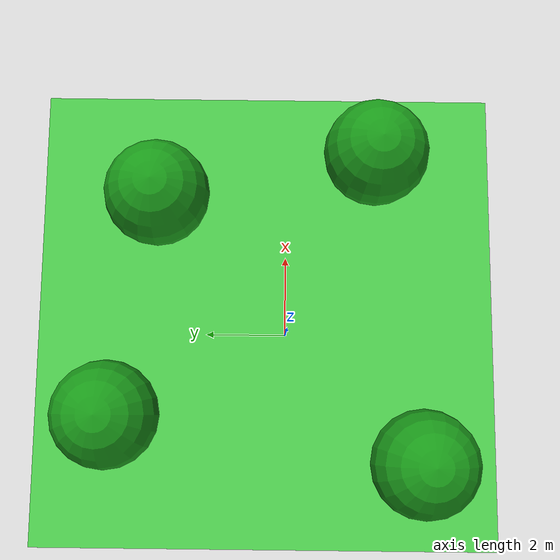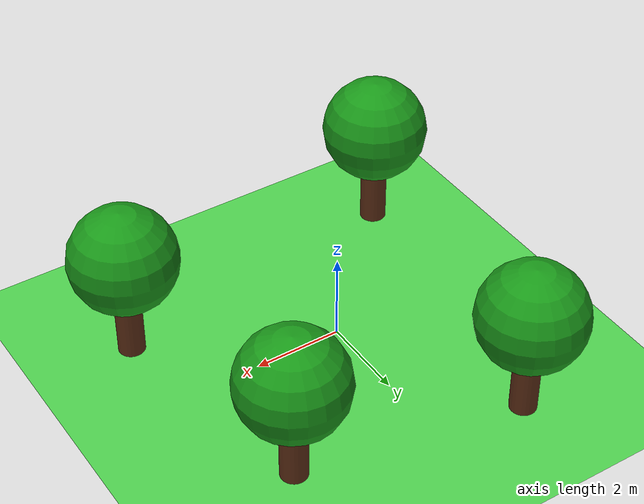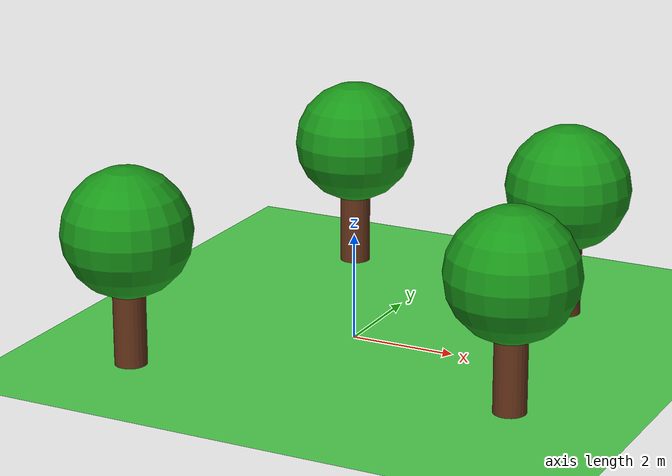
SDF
<?xml version="1.0"?>
<sdf version='1.8'>
  <world name="simple_test_world">
    <!-- Basic world setup -->
    <plugin name='ignition::gazebo::systems::Physics' filename='ignition-gazebo-physics-system' />
    <plugin name='ignition::gazebo::systems::UserCommands' filename='ignition-gazebo-user-commands-system' />
    <plugin name='ignition::gazebo::systems::SceneBroadcaster' filename='ignition-gazebo-scene-broadcaster-system' />
    <plugin name='ignition::gazebo::systems::Contact' filename='ignition-gazebo-contact-system' />

    <!-- Lighting -->
    <light name="sun" type="directional">
      <cast_shadows>1</cast_shadows>
      <pose>0 0 25 0 -0 0</pose>
      <diffuse>1.0 0.9 0.8 1</diffuse>
      <specular>0.4 0.4 0.4 1</specular>
      <attenuation>
        <range>1000</range>
        <constant>0.9</constant>
        <linear>0.01</linear>
        <quadratic>0.001</quadratic>
      </attenuation>
      <direction>-0.2 0.1 -0.9</direction>
    </light>

    <!-- Physics -->
    <gravity>0 0 -9.81</gravity>
    <physics name="default_physics" type="ignored">
      <max_step_size>0.01</max_step_size>
      <real_time_factor>1</real_time_factor>
      <real_time_update_rate>100</real_time_update_rate>
    </physics>

    <!-- Scene settings -->
    <scene>
      <ambient>0.9 0.9 0.8 1</ambient>
      <background>0.6 0.8 1.0 1</background>
      <shadows>1</shadows>
    </scene>

    <!-- GPS coordinates -->
    <spherical_coordinates>
      <latitude_deg>-33.8847</latitude_deg>
      <longitude_deg>151.2059</longitude_deg>
      <elevation>10.0</elevation>
      <heading_deg>0</heading_deg>
      <surface_model>EARTH_WGS84</surface_model>
    </spherical_coordinates>

    <!-- Ground plane -->
    <model name="ground_plane">
      <static>true</static>
      <pose>0 0 0 0 0 0</pose>
      <link name="ground_link">
        <collision name="ground_collision">
          <geometry>
            <plane>
              <normal>0 0 1</normal>
              <size>50 50</size>
            </plane>
          </geometry>
        </collision>
        <visual name="ground_visual">
          <geometry>
            <plane>
              <normal>0 0 1</normal>
              <size>50 50</size>
            </plane>
          </geometry>
          <material>
            <ambient>0.3 0.8 0.3 1</ambient>
            <diffuse>0.3 0.8 0.3 1</diffuse>
          </material>
        </visual>
      </link>
    </model>

    <!-- Simple tree obstacles (using boxes) -->
    <model name="tree_1">
      <static>true</static>
      <pose>-3 -3 1 0 0 0</pose>
      <link name="tree_link">
        <collision name="tree_collision">
          <geometry>
            <cylinder>
              <radius>0.3</radius>
              <length>2</length>
            </cylinder>
          </geometry>
        </collision>
        <visual name="tree_visual">
          <geometry>
            <cylinder>
              <radius>0.3</radius>
              <length>2</length>
            </cylinder>
          </geometry>
          <material>
            <ambient>0.4 0.2 0.1 1</ambient>
            <diffuse>0.4 0.2 0.1 1</diffuse>
          </material>
        </visual>
      </link>
      <!-- Tree canopy -->
      <link name="canopy_link">
        <pose>0 0 1.5 0 0 0</pose>
        <visual name="canopy_visual">
          <geometry>
            <sphere>
              <radius>1.2</radius>
            </sphere>
          </geometry>
          <material>
            <ambient>0.1 0.6 0.1 1</ambient>
            <diffuse>0.1 0.6 0.1 1</diffuse>
          </material>
        </visual>
      </link>
      <joint name="canopy_joint" type="fixed">
        <parent>tree_link</parent>
        <child>canopy_link</child>
      </joint>
    </model>

    <model name="tree_2">
      <static>true</static>
      <pose>3 3 1 0 0 0</pose>
      <link name="tree_link">
        <collision name="tree_collision">
          <geometry>
            <cylinder>
              <radius>0.3</radius>
              <length>2</length>
            </cylinder>
          </geometry>
        </collision>
        <visual name="tree_visual">
          <geometry>
            <cylinder>
              <radius>0.3</radius>
              <length>2</length>
            </cylinder>
          </geometry>
          <material>
            <ambient>0.4 0.2 0.1 1</ambient>
            <diffuse>0.4 0.2 0.1 1</diffuse>
          </material>
        </visual>
      </link>
      <!-- Tree canopy -->
      <link name="canopy_link">
        <pose>0 0 1.5 0 0 0</pose>
        <visual name="canopy_visual">
          <geometry>
            <sphere>
              <radius>1.2</radius>
            </sphere>
          </geometry>
          <material>
            <ambient>0.1 0.6 0.1 1</ambient>
            <diffuse>0.1 0.6 0.1 1</diffuse>
          </material>
        </visual>
      </link>
      <joint name="canopy_joint" type="fixed">
        <parent>tree_link</parent>
        <child>canopy_link</child>
      </joint>
    </model>

    <model name="tree_3">
      <static>true</static>
      <pose>-2 4 1 0 0 0</pose>
      <link name="tree_link">
        <collision name="tree_collision">
          <geometry>
            <cylinder>
              <radius>0.3</radius>
              <length>2</length>
            </cylinder>
          </geometry>
        </collision>
        <visual name="tree_visual">
          <geometry>
            <cylinder>
              <radius>0.3</radius>
              <length>2</length>
            </cylinder>
          </geometry>
          <material>
            <ambient>0.4 0.2 0.1 1</ambient>
            <diffuse>0.4 0.2 0.1 1</diffuse>
          </material>
        </visual>
      </link>
      <!-- Tree canopy -->
      <link name="canopy_link">
        <pose>0 0 1.5 0 0 0</pose>
        <visual name="canopy_visual">
          <geometry>
            <sphere>
              <radius>1.2</radius>
            </sphere>
          </geometry>
          <material>
            <ambient>0.1 0.6 0.1 1</ambient>
            <diffuse>0.1 0.6 0.1 1</diffuse>
          </material>
        </visual>
      </link>
      <joint name="canopy_joint" type="fixed">
        <parent>tree_link</parent>
        <child>canopy_link</child>
      </joint>
    </model>

    <model name="tree_4">
      <static>true</static>
      <pose>4 -2 1 0 0 0</pose>
      <link name="tree_link">
        <collision name="tree_collision">
          <geometry>
            <cylinder>
              <radius>0.3</radius>
              <length>2</length>
            </cylinder>
          </geometry>
        </collision>
        <visual name="tree_visual">
          <geometry>
            <cylinder>
              <radius>0.3</radius>
              <length>2</length>
            </cylinder>
          </geometry>
          <material>
            <ambient>0.4 0.2 0.1 1</ambient>
            <diffuse>0.4 0.2 0.1 1</diffuse>
          </material>
        </visual>
      </link>
      <!-- Tree canopy -->
      <link name="canopy_link">
        <pose>0 0 1.5 0 0 0</pose>
        <visual name="canopy_visual">
          <geometry>
            <sphere>
              <radius>1.2</radius>
            </sphere>
          </geometry>
          <material>
            <ambient>0.1 0.6 0.1 1</ambient>
            <diffuse>0.1 0.6 0.1 1</diffuse>
          </material>
        </visual>
      </link>
      <joint name="canopy_joint" type="fixed">
        <parent>tree_link</parent>
        <child>canopy_link</child>
      </joint>
    </model>

  </world>
</sdf>
